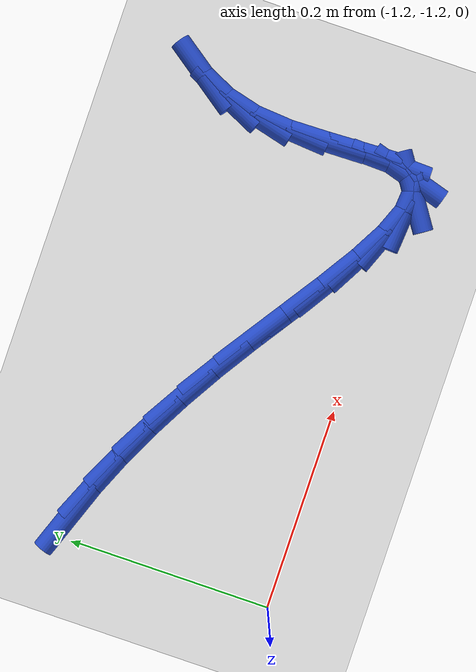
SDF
<sdf version="1.6">
 <world name="default">
  <model name="ground_plane">
   <static>1</static>
   <link name="link">
    <collision name="collision">
     <geometry><plane><normal>0 0 1</normal><size>100 100</size></plane></geometry>
     <surface><friction><ode><mu>100</mu><mu2>50</mu2></ode></friction></surface>
    </collision>
    <visual name="visual">
     <cast_shadows>0</cast_shadows>
     <geometry><plane><normal>0 0 1</normal><size>100 100</size></plane></geometry>
     <material>
      <script><uri>file://media/materials/scripts/gazebo.material</uri><name>Gazebo/WhiteGlow</name></script>
     </material>
    </visual>
   </link>
  </model>
  <model name="line">
   <link name="link_189">
    <pose>-1.1763684480244334 -0.990647286002664 0.01 0 1.57 -0.35100814881922443</pose>
    <collision name="collision">
     <geometry><cylinder><radius>0.01</radius><length>0.08</length></cylinder></geometry>
    </collision>
    <visual name="visual">
     <material>
      <script><name>Gazebo/Blue</name><uri>file://media/materials/scripts/gazebo.material</uri></script>
     </material>
     <geometry><cylinder><radius>0.01</radius><length>0.08</length></cylinder></geometry>
    </visual>
   </link>
   <link name="link_190">
    <pose>-1.1417709000140013 -1.0033159184636413 0.01 0 1.57 -0.40750122783744824</pose>
    <collision name="collision">
     <geometry><cylinder><radius>0.01</radius><length>0.08</length></cylinder></geometry>
    </collision>
    <visual name="visual">
     <material>
      <script><name>Gazebo/Blue</name><uri>file://media/materials/scripts/gazebo.material</uri></script>
     </material>
     <geometry><cylinder><radius>0.01</radius><length>0.08</length></cylinder></geometry>
    </visual>
   </link>
   <link name="link_191">
    <pose>-1.10645238761951 -1.0185616353917917 0.01 0 1.57 -0.45736566217714286</pose>
    <collision name="collision">
     <geometry><cylinder><radius>0.01</radius><length>0.08</length></cylinder></geometry>
    </collision>
    <visual name="visual">
     <material>
      <script><name>Gazebo/Blue</name><uri>file://media/materials/scripts/gazebo.material</uri></script>
     </material>
     <geometry><cylinder><radius>0.01</radius><length>0.08</length></cylinder></geometry>
    </visual>
   </link>
   <link name="link_192">
    <pose>-1.070476564146177 -1.0362679302127276 0.01 0 1.57 -0.5015227859257324</pose>
    <collision name="collision">
     <geometry><cylinder><radius>0.01</radius><length>0.08</length></cylinder></geometry>
    </collision>
    <visual name="visual">
     <material>
      <script><name>Gazebo/Blue</name><uri>file://media/materials/scripts/gazebo.material</uri></script>
     </material>
     <geometry><cylinder><radius>0.01</radius><length>0.08</length></cylinder></geometry>
    </visual>
   </link>
   <link name="link_193">
    <pose>-1.0339070828992187 -1.0563182963520616 0.01 0 1.57 -0.5407809191477515</pose>
    <collision name="collision">
     <geometry><cylinder><radius>0.01</radius><length>0.08</length></cylinder></geometry>
    </collision>
    <visual name="visual">
     <material>
      <script><name>Gazebo/Blue</name><uri>file://media/materials/scripts/gazebo.material</uri></script>
     </material>
     <geometry><cylinder><radius>0.01</radius><length>0.08</length></cylinder></geometry>
    </visual>
   </link>
   <link name="link_194">
    <pose>-0.9968075971838511 -1.0785962272354064 0.01 0 1.57 -0.5753043901175506</pose>
    <collision name="collision">
     <geometry><cylinder><radius>0.01</radius><length>0.08</length></cylinder></geometry>
    </collision>
    <visual name="visual">
     <material>
      <script><name>Gazebo/Blue</name><uri>file://media/materials/scripts/gazebo.material</uri></script>
     </material>
     <geometry><cylinder><radius>0.01</radius><length>0.08</length></cylinder></geometry>
    </visual>
   </link>
   <link name="link_195">
    <pose>-0.9592675247228106 -1.1029401309336146 0.01 0 1.57 -0.5959121361244972</pose>
    <collision name="collision">
     <geometry><cylinder><radius>0.01</radius><length>0.08</length></cylinder></geometry>
    </collision>
    <visual name="visual">
     <material>
      <script><name>Gazebo/Blue</name><uri>file://media/materials/scripts/gazebo.material</uri></script>
     </material>
     <geometry><cylinder><radius>0.01</radius><length>0.08</length></cylinder></geometry>
    </visual>
   </link>
   <link name="link_196">
    <pose>-0.9218915594656075 -1.1282867296375567 0.01 0 1.57 -0.5949822205874281</pose>
    <collision name="collision">
     <geometry><cylinder><radius>0.01</radius><length>0.08</length></cylinder></geometry>
    </collision>
    <visual name="visual">
     <material>
      <script><name>Gazebo/Blue</name><uri>file://media/materials/scripts/gazebo.material</uri></script>
     </material>
     <geometry><cylinder><radius>0.01</radius><length>0.08</length></cylinder></geometry>
    </visual>
   </link>
   <link name="link_197">
    <pose>-0.8857600652795306 -1.1527403670465126 0.01 0 1.57 -0.5695015267506995</pose>
    <collision name="collision">
     <geometry><cylinder><radius>0.01</radius><length>0.08</length></cylinder></geometry>
    </collision>
    <visual name="visual">
     <material>
      <script><name>Gazebo/Blue</name><uri>file://media/materials/scripts/gazebo.material</uri></script>
     </material>
     <geometry><cylinder><radius>0.01</radius><length>0.08</length></cylinder></geometry>
    </visual>
   </link>
   <link name="link_198">
    <pose>-0.8519712333003444 -1.1743741907838967 0.01 0 1.57 -0.5077823638496173</pose>
    <collision name="collision">
     <geometry><cylinder><radius>0.01</radius><length>0.08</length></cylinder></geometry>
    </collision>
    <visual name="visual">
     <material>
      <script><name>Gazebo/Blue</name><uri>file://media/materials/scripts/gazebo.material</uri></script>
     </material>
     <geometry><cylinder><radius>0.01</radius><length>0.08</length></cylinder></geometry>
    </visual>
   </link>
   <link name="link_199">
    <pose>-0.8216232546638136 -1.1912613484731227 0.01 0 1.57 -0.3768289679495641</pose>
    <collision name="collision">
     <geometry><cylinder><radius>0.01</radius><length>0.08</length></cylinder></geometry>
    </collision>
    <visual name="visual">
     <material>
      <script><name>Gazebo/Blue</name><uri>file://media/materials/scripts/gazebo.material</uri></script>
     </material>
     <geometry><cylinder><radius>0.01</radius><length>0.08</length></cylinder></geometry>
    </visual>
   </link>
   <link name="link_200">
    <pose>-0.7958143205057021 -1.201474987737605 0.01 0 1.57 -0.07980696094064973</pose>
    <collision name="collision">
     <geometry><cylinder><radius>0.01</radius><length>0.08</length></cylinder></geometry>
    </collision>
    <visual name="visual">
     <material>
      <script><name>Gazebo/Blue</name><uri>file://media/materials/scripts/gazebo.material</uri></script>
     </material>
     <geometry><cylinder><radius>0.01</radius><length>0.08</length></cylinder></geometry>
    </visual>
   </link>
   <link name="link_201">
    <pose>-0.7756426219617747 -1.2030882562007565 0.01 0 1.57 0.5857548122590306</pose>
    <collision name="collision">
     <geometry><cylinder><radius>0.01</radius><length>0.08</length></cylinder></geometry>
    </collision>
    <visual name="visual">
     <material>
      <script><name>Gazebo/Blue</name><uri>file://media/materials/scripts/gazebo.material</uri></script>
     </material>
     <geometry><cylinder><radius>0.01</radius><length>0.08</length></cylinder></geometry>
    </visual>
   </link>
   <link name="link_202">
    <pose>-0.7622063501677951 -1.1941743014859916 0.01 0 1.57 1.281588771794503</pose>
    <collision name="collision">
     <geometry><cylinder><radius>0.01</radius><length>0.08</length></cylinder></geometry>
    </collision>
    <visual name="visual">
     <material>
      <script><name>Gazebo/Blue</name><uri>file://media/materials/scripts/gazebo.material</uri></script>
     </material>
     <geometry><cylinder><radius>0.01</radius><length>0.08</length></cylinder></geometry>
    </visual>
   </link>
   <link name="link_203">
    <pose>-0.7560703487675867 -1.1735525510138545 0.01 0 1.57 1.53964349595049</pose>
    <collision name="collision">
     <geometry><cylinder><radius>0.01</radius><length>0.08</length></cylinder></geometry>
    </collision>
    <visual name="visual">
     <material>
      <script><name>Gazebo/Blue</name><uri>file://media/materials/scripts/gazebo.material</uri></script>
     </material>
     <geometry><cylinder><radius>0.01</radius><length>0.08</length></cylinder></geometry>
    </visual>
   </link>
   <link name="link_204">
    <pose>-0.7551419546243543 -1.1437609152784431 0.01 0 1.57 -1.5322401006318014</pose>
    <collision name="collision">
     <geometry><cylinder><radius>0.01</radius><length>0.08</length></cylinder></geometry>
    </collision>
    <visual name="visual">
     <material>
      <script><name>Gazebo/Blue</name><uri>file://media/materials/scripts/gazebo.material</uri></script>
     </material>
     <geometry><cylinder><radius>0.01</radius><length>0.08</length></cylinder></geometry>
    </visual>
   </link>
   <link name="link_205">
    <pose>-0.7565024190523121 -1.108493194630335 0.01 0 1.57 -1.5510871133449975</pose>
    <collision name="collision">
     <geometry><cylinder><radius>0.01</radius><length>0.08</length></cylinder></geometry>
    </collision>
    <visual name="visual">
     <material>
      <script><name>Gazebo/Blue</name><uri>file://media/materials/scripts/gazebo.material</uri></script>
     </material>
     <geometry><cylinder><radius>0.01</radius><length>0.08</length></cylinder></geometry>
    </visual>
   </link>
   <link name="link_206">
    <pose>-0.7572327328968175 -1.07144355387789 0.01 0 1.57 1.4914201972841818</pose>
    <collision name="collision">
     <geometry><cylinder><radius>0.01</radius><length>0.08</length></cylinder></geometry>
    </collision>
    <visual name="visual">
     <material>
      <script><name>Gazebo/Blue</name><uri>file://media/materials/scripts/gazebo.material</uri></script>
     </material>
     <geometry><cylinder><radius>0.01</radius><length>0.08</length></cylinder></geometry>
    </visual>
   </link>
   <link name="link_207">
    <pose>-0.7544357028597798 -1.0362799185270555 0.01 0 1.57 1.320746233465801</pose>
    <collision name="collision">
     <geometry><cylinder><radius>0.01</radius><length>0.08</length></cylinder></geometry>
    </collision>
    <visual name="visual">
     <material>
      <script><name>Gazebo/Blue</name><uri>file://media/materials/scripts/gazebo.material</uri></script>
     </material>
     <geometry><cylinder><radius>0.01</radius><length>0.08</length></cylinder></geometry>
    </visual>
   </link>
   <link name="link_208">
    <pose>-0.7464835770877616 -1.00514337703822 0.01 0 1.57 1.1327874041586998</pose>
    <collision name="collision">
     <geometry><cylinder><radius>0.01</radius><length>0.08</length></cylinder></geometry>
    </collision>
    <visual name="visual">
     <material>
      <script><name>Gazebo/Blue</name><uri>file://media/materials/scripts/gazebo.material</uri></script>
     </material>
     <geometry><cylinder><radius>0.01</radius><length>0.08</length></cylinder></geometry>
    </visual>
   </link>
   <link name="link_209">
    <pose>-0.7336938498632662 -0.9778353480306898 0.01 0 1.57 0.9480378967083922</pose>
    <collision name="collision">
     <geometry><cylinder><radius>0.01</radius><length>0.08</length></cylinder></geometry>
    </collision>
    <visual name="visual">
     <material>
      <script><name>Gazebo/Blue</name><uri>file://media/materials/scripts/gazebo.material</uri></script>
     </material>
     <geometry><cylinder><radius>0.01</radius><length>0.08</length></cylinder></geometry>
    </visual>
   </link>
  </model>
 </world>
</sdf>
